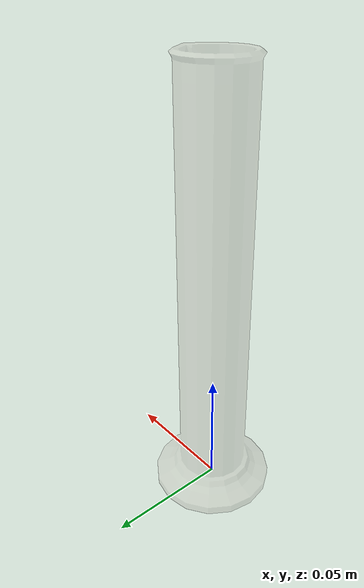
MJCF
<?xml version="1.0" ?>
<!-- @bbox dx=0.050 dy=0.050 dz=0.180 -->
<mujoco model="cylinder_mid">
  <asset>
    <texture type="2d" name="lab_cylinder_a" file="lab_cylinder_a.png"/>
    <material name="lab_cylinder_a" texture="lab_cylinder_a" specular="0.4000000000000001" shininess="0.001" rgba="1 1 1 0.3"/>
    <mesh file="cylinder_mid.obj" scale="0.010809395539574273 0.010809395539574273 0.010809395539574273"/>
    <mesh file="cylinder_mid/cylinder_mid_collision_0.obj" scale="0.010809395539574273 0.010809395539574273 0.010809395539574273"/>
    <mesh file="cylinder_mid/cylinder_mid_collision_1.obj" scale="0.010809395539574273 0.010809395539574273 0.010809395539574273"/>
    <mesh file="cylinder_mid/cylinder_mid_collision_2.obj" scale="0.010809395539574273 0.010809395539574273 0.010809395539574273"/>
    <mesh file="cylinder_mid/cylinder_mid_collision_3.obj" scale="0.010809395539574273 0.010809395539574273 0.010809395539574273"/>
    <mesh file="cylinder_mid/cylinder_mid_collision_4.obj" scale="0.010809395539574273 0.010809395539574273 0.010809395539574273"/>
    <mesh file="cylinder_mid/cylinder_mid_collision_5.obj" scale="0.010809395539574273 0.010809395539574273 0.010809395539574273"/>
    <mesh file="cylinder_mid/cylinder_mid_collision_6.obj" scale="0.010809395539574273 0.010809395539574273 0.010809395539574273"/>
    <mesh file="cylinder_mid/cylinder_mid_collision_7.obj" scale="0.010809395539574273 0.010809395539574273 0.010809395539574273"/>
    <mesh file="cylinder_mid/cylinder_mid_collision_8.obj" scale="0.010809395539574273 0.010809395539574273 0.010809395539574273"/>
      <material name="CaSO4" rgba="1 1 1 0.7"/>
    <material name="CuCl2" rgba="0.141 1.0 0.174 0.4"/>
    <material name="CuSO4" rgba="0 0.45 1 0.4"/>
    <material name="FeCl3" rgba="0.6475 0.5686 0.023 0.4"/>
    <material name="KMnO4" rgba="0.5 0 0.5 0.4"/>
    <material name="I2" rgba="0.3 0.13 0.0 0.4"/>
    <material name="K2CrO4" rgba="0.57 0.12 0.013 0.4"/>
    <material name="NaCl" rgba="1 1 1 0.3"/>
</asset>
  <worldbody>
    <body name="cylinder_mid">
      <inertial pos="0 0 0.090000" mass="0.02" diaginertia="0.001152 0.001152 0.00072"/>
      <geom material="lab_cylinder_a" mesh="cylinder_mid" class="visual"/>
      <geom mesh="cylinder_mid_collision_0"  class="collision"/>
      <geom mesh="cylinder_mid_collision_1"  class="collision"/>
      <geom mesh="cylinder_mid_collision_2"  class="collision"/>
      <geom mesh="cylinder_mid_collision_3"  class="collision"/>
      <geom mesh="cylinder_mid_collision_4"  class="collision"/>
      <geom mesh="cylinder_mid_collision_5"  class="collision"/>
      <geom mesh="cylinder_mid_collision_6"  class="collision"/>
      <geom mesh="cylinder_mid_collision_7"  class="collision"/>
      <geom mesh="cylinder_mid_collision_8"  class="collision"/>
      <!-- Anti-slip box: collision + visual overlay. Both boxes share identical size/pos. -->
      <geom name="grip_assist" type="box" size="0.0165 0.0165 0.09" pos="0 0 0.09"
            contype="2" conaffinity="2" group="3" friction="1 1 0.1"
            density="50" solref="0.001 1"/>
      <site class="grasppoint" pos="0.0000 0.0000 0.158" group="4"/>
          <geom name="solution" type="cylinder" size="0.0113 0.050012" pos="0 0 0.059524" material="CaSO4" class="visual"/>
      <site name="top_site" pos="0 0 0.180000" size="0.01" rgba="1 0 0 0"/>
      <site name="bottom_site" pos="0 0 0.000000" size="0.01" rgba="0 1 0 0"/>
      <site class="placepoint" name="placepoint" pos="0 0 0.1800" group="2"/>
      <!-- bound_sites (group=3): 容器 AABB 8 角，用于 contain() / 安全边界 -->
      <site class="boundpoint" name="bnd_p0"   pos="-0.025 -0.025 0.0"   rgba="0 0 0 0" group="3"/>
      <site class="boundpoint" name="bnd_px"   pos=" 0.025 -0.025 0.0"   rgba="0 0 0 0" group="3"/>
      <site class="boundpoint" name="bnd_py"   pos="-0.025  0.025 0.0"   rgba="0 0 0 0" group="3"/>
      <site class="boundpoint" name="bnd_pxy"  pos=" 0.025  0.025 0.0"   rgba="0 0 0 0" group="3"/>
      <site class="boundpoint" name="bnd_pz"   pos="-0.025 -0.025 0.180" rgba="0 0 0 0" group="3"/>
      <site class="boundpoint" name="bnd_pxz"  pos=" 0.025 -0.025 0.180" rgba="0 0 0 0" group="3"/>
      <site class="boundpoint" name="bnd_pyz"  pos="-0.025  0.025 0.180" rgba="0 0 0 0" group="3"/>
      <site class="boundpoint" name="bnd_pxyz" pos=" 0.025  0.025 0.180" rgba="0 0 0 0" group="3"/>
</body>
  </worldbody>
  <compiler boundmass="0.015" boundinertia="1e-05" angle="radian"/>
  <default>
    <default class="visual">
      <geom group="2" type="mesh" contype="0" conaffinity="0" density="50"/>
    </default>
    <default class="collision">
      <geom group="3" type="mesh" density="50" friction="1 1 0.001" solimp="0.999 0.999 0.001" solref="0.01 1"/>
    </default>
    <default class="grasppoint">
      <site type="sphere" size="0.005" group="4" rgba="0 0 1 1"/>
    </default>
    <default class="boundpoint">
      <site type="sphere" size="0.01" group="3" rgba="1 0 0 1"/>
    </default>
    <default class="placepoint">
      <site type="sphere" size="0.01" group="2" rgba="0 0 1 0"/>
    </default>
  </default>
</mujoco>
